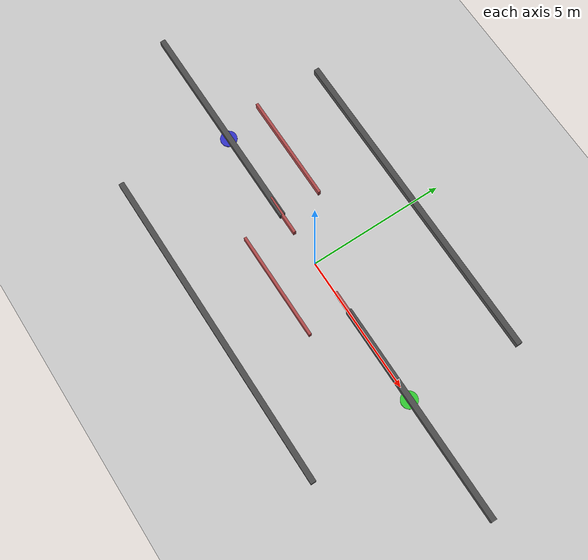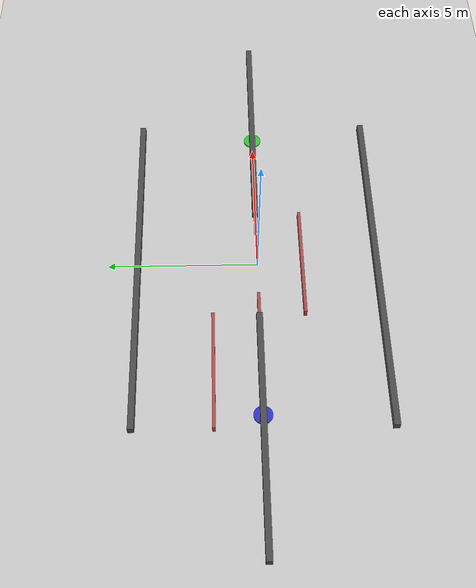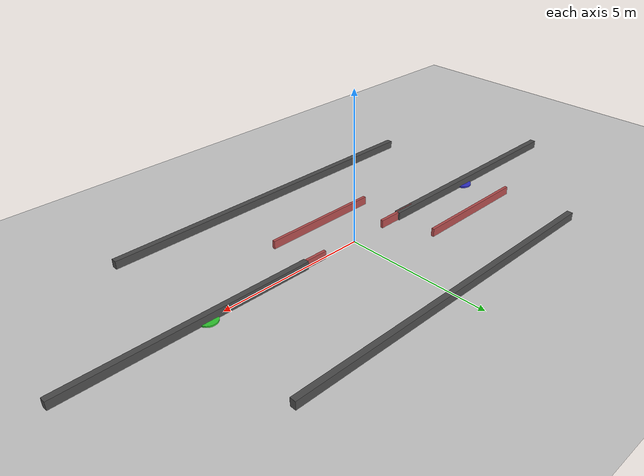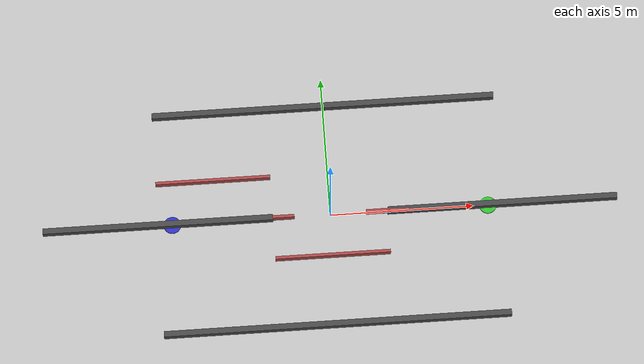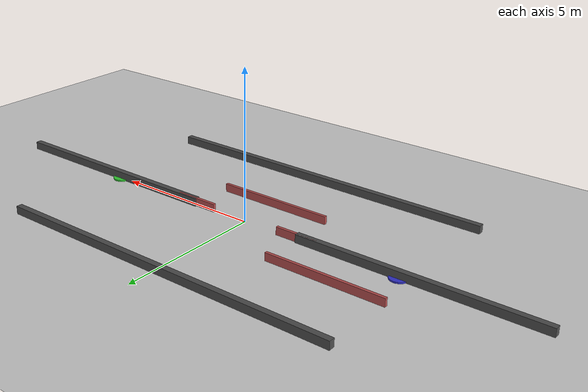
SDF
<?xml version="1.0" ?>
<sdf version="1.6">
  <world name="maze">
    <physics type="ode">
      <max_step_size>0.001</max_step_size>
      <real_time_factor>1</real_time_factor>
    </physics>
    <include>
      <uri>model://sun</uri>
    </include>
    <include>
      <uri>model://ground_plane</uri>
    </include>
    <model name="wall_north">
      <pose>0 4.0 0.0 0 0 0</pose>
      <static>true</static>
      <link name="link">
        <collision name="collision">
          <geometry>
            <box>
              <size>12.0 0.2 0.5</size>
            </box>
          </geometry>
        </collision>
        <visual name="visual">
          <geometry>
            <box>
              <size>12.0 0.2 0.5</size>
            </box>
          </geometry>
          <material>
            <diffuse>0.3 0.3 0.3 1</diffuse>
          </material>
        </visual>
      </link>
    </model>
    <model name="wall_south">
      <pose>0 -4.0 0.0 0 0 0</pose>
      <static>true</static>
      <link name="link">
        <collision name="collision">
          <geometry>
            <box>
              <size>12.0 0.2 0.5</size>
            </box>
          </geometry>
        </collision>
        <visual name="visual">
          <geometry>
            <box>
              <size>12.0 0.2 0.5</size>
            </box>
          </geometry>
          <material>
            <diffuse>0.3 0.3 0.3 1</diffuse>
          </material>
        </visual>
      </link>
    </model>
    <model name="wall_east">
      <pose>6.0 0 0.0 0 0 1.57</pose>
      <static>true</static>
      <link name="link">
        <collision name="collision">
          <geometry>
            <box>
              <size>0.2 8.0 0.5</size>
            </box>
          </geometry>
        </collision>
        <visual name="visual">
          <geometry>
            <box>
              <size>0.2 8.0 0.5</size>
            </box>
          </geometry>
          <material>
            <diffuse>0.3 0.3 0.3 1</diffuse>
          </material>
        </visual>
      </link>
    </model>
    <model name="wall_west">
      <pose>-6.0 0 0.0 0 0 1.57</pose>
      <static>true</static>
      <link name="link">
        <collision name="collision">
          <geometry>
            <box>
              <size>0.2 8.0 0.5</size>
            </box>
          </geometry>
        </collision>
        <visual name="visual">
          <geometry>
            <box>
              <size>0.2 8.0 0.5</size>
            </box>
          </geometry>
          <material>
            <diffuse>0.3 0.3 0.3 1</diffuse>
          </material>
        </visual>
      </link>
    </model>
    <model name="wall_4">
      <pose>-4.0 1.5 0.0 0 0 0</pose>
      <static>true</static>
      <link name="link">
        <collision name="collision">
          <geometry>
            <box>
              <size>4.0 0.1 0.5</size>
            </box>
          </geometry>
        </collision>
        <visual name="visual">
          <geometry>
            <box>
              <size>4.0 0.1 0.5</size>
            </box>
          </geometry>
          <material>
            <diffuse>0.7 0.3 0.3 1</diffuse>
          </material>
        </visual>
      </link>
    </model>
    <model name="wall_5">
      <pose>0.0 -1.5 0.0 0 0 0</pose>
      <static>true</static>
      <link name="link">
        <collision name="collision">
          <geometry>
            <box>
              <size>4.0 0.1 0.5</size>
            </box>
          </geometry>
        </collision>
        <visual name="visual">
          <geometry>
            <box>
              <size>4.0 0.1 0.5</size>
            </box>
          </geometry>
          <material>
            <diffuse>0.7 0.3 0.3 1</diffuse>
          </material>
        </visual>
      </link>
    </model>
    <model name="wall_6">
      <pose>-2.0 0.0 0.0 0 0 1.57</pose>
      <static>true</static>
      <link name="link">
        <collision name="collision">
          <geometry>
            <box>
              <size>0.1 1.5 0.5</size>
            </box>
          </geometry>
        </collision>
        <visual name="visual">
          <geometry>
            <box>
              <size>0.1 1.5 0.5</size>
            </box>
          </geometry>
          <material>
            <diffuse>0.7 0.3 0.3 1</diffuse>
          </material>
        </visual>
      </link>
    </model>
    <model name="wall_7">
      <pose>2.0 0.0 0.0 0 0 1.57</pose>
      <static>true</static>
      <link name="link">
        <collision name="collision">
          <geometry>
            <box>
              <size>0.1 1.5 0.5</size>
            </box>
          </geometry>
        </collision>
        <visual name="visual">
          <geometry>
            <box>
              <size>0.1 1.5 0.5</size>
            </box>
          </geometry>
          <material>
            <diffuse>0.7 0.3 0.3 1</diffuse>
          </material>
        </visual>
      </link>
    </model>
    <model name="start">
      <pose>-5.5 0.0 0.0 0 0 0</pose>
      <static>true</static>
      <link name="link">
        <collision name="collision">
          <geometry>
            <cylinder>
              <radius>0.3</radius>
              <length>0.05</length>
            </cylinder>
          </geometry>
        </collision>
        <visual name="visual">
          <geometry>
            <cylinder>
              <radius>0.3</radius>
              <length>0.05</length>
            </cylinder>
          </geometry>
          <material>
            <diffuse>0.2 0.2 0.8 1</diffuse>
          </material>
        </visual>
      </link>
    </model>
    <model name="goal">
      <pose>5.5 0.0 0.0 0 0 0</pose>
      <static>true</static>
      <link name="link">
        <collision name="collision">
          <geometry>
            <cylinder>
              <radius>0.3</radius>
              <length>0.05</length>
            </cylinder>
          </geometry>
        </collision>
        <visual name="visual">
          <geometry>
            <cylinder>
              <radius>0.3</radius>
              <length>0.05</length>
            </cylinder>
          </geometry>
          <material>
            <diffuse>0.2 0.8 0.2 1</diffuse>
          </material>
        </visual>
      </link>
    </model>
  </world>
</sdf>
